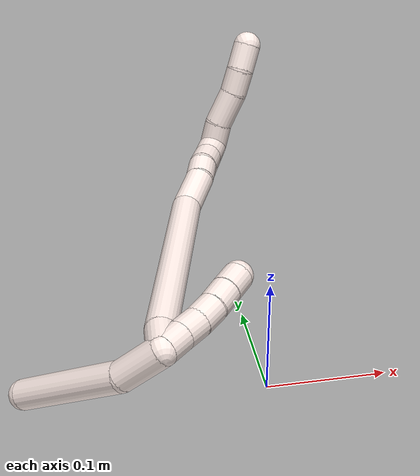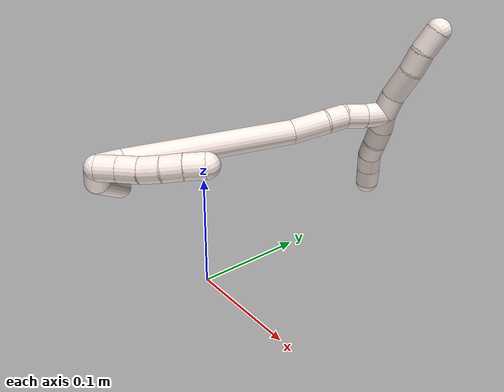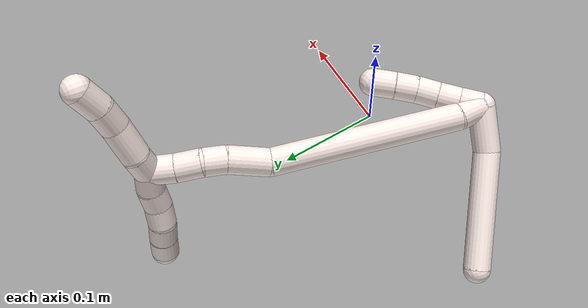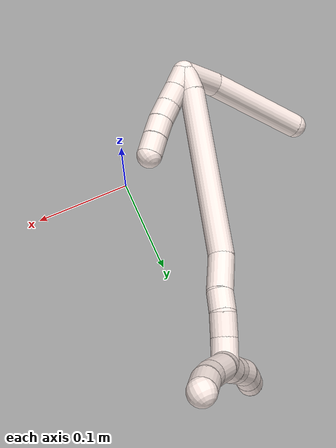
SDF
<sdf version="1.7">
 <world name="default">
  <model name="11">
   <static>0</static>
   <link name="11">
    <collision name="collision-cylinder-e_1_2_8">
     <pose>-0.01967 -0.007512 0.003045 1.18562 -1.17992 -0.847369</pose>
     <geometry><cylinder><radius>0.0125</radius><length>0.04255</length></cylinder></geometry>
     <surface>
      <friction><ode><mu>1.16</mu><mu2>1.16</mu2><slip1>0</slip1><slip2>0</slip2></ode></friction>
      <contact><ode><kp>1e+06</kp><kd>1</kd><max_vel>0</max_vel><min_depth>0.001</min_depth></ode></contact>
     </surface>
    </collision>
    <visual name="visual-cylinder-e_1_2_8">
     <pose>-0.01967 -0.007512 0.003045 1.18562 -1.17992 -0.847369</pose>
     <geometry><cylinder><radius>0.0125</radius><length>0.04255</length></cylinder></geometry>
     <material><ambient>1 0.933333 0.909804 1</ambient></material>
    </visual>
    <collision name="collision-cylinder-e_2_8_6">
     <pose>-0.083115 -0.034974 0.030011 0.695154 -0.952362 -0.369449</pose>
     <geometry><cylinder><radius>0.0125</radius><length>0.10745</length></cylinder></geometry>
     <surface>
      <friction><ode><mu>1.16</mu><mu2>1.16</mu2><slip1>0</slip1><slip2>0</slip2></ode></friction>
      <contact><ode><kp>1e+06</kp><kd>1</kd><max_vel>0</max_vel><min_depth>0.001</min_depth></ode></contact>
     </surface>
    </collision>
    <visual name="visual-cylinder-e_2_8_6">
     <pose>-0.083115 -0.034974 0.030011 0.695154 -0.952362 -0.369449</pose>
     <geometry><cylinder><radius>0.0125</radius><length>0.10745</length></cylinder></geometry>
     <material><ambient>1 0.933333 0.909804 1</ambient></material>
    </visual>
    <collision name="collision-cylinder-e_1_2_9">
     <pose>0.002014 0.007321 0.006508 -0.844098 0.202737 -0.091285</pose>
     <geometry><cylinder><radius>0.0125</radius><length>0.02</length></cylinder></geometry>
     <surface>
      <friction><ode><mu>1.16</mu><mu2>1.16</mu2><slip1>0</slip1><slip2>0</slip2></ode></friction>
      <contact><ode><kp>1e+06</kp><kd>1</kd><max_vel>0</max_vel><min_depth>0.001</min_depth></ode></contact>
     </surface>
    </collision>
    <visual name="visual-cylinder-e_1_2_9">
     <pose>0.002014 0.007321 0.006508 -0.844098 0.202737 -0.091285</pose>
     <geometry><cylinder><radius>0.0125</radius><length>0.02</length></cylinder></geometry>
     <material><ambient>1 0.933333 0.909804 1</ambient></material>
    </visual>
    <collision name="collision-cylinder-e_2_9_10">
     <pose>0.006191 0.0221 0.019316 -0.869417 0.218171 -0.10162</pose>
     <geometry><cylinder><radius>0.0125</radius><length>0.02</length></cylinder></geometry>
     <surface>
      <friction><ode><mu>1.16</mu><mu2>1.16</mu2><slip1>0</slip1><slip2>0</slip2></ode></friction>
      <contact><ode><kp>1e+06</kp><kd>1</kd><max_vel>0</max_vel><min_depth>0.001</min_depth></ode></contact>
     </surface>
    </collision>
    <visual name="visual-cylinder-e_2_9_10">
     <pose>0.006191 0.0221 0.019316 -0.869417 0.218171 -0.10162</pose>
     <geometry><cylinder><radius>0.0125</radius><length>0.02</length></cylinder></geometry>
     <material><ambient>1 0.933333 0.909804 1</ambient></material>
    </visual>
    <collision name="collision-cylinder-e_3_10_11">
     <pose>0.011306 0.036351 0.032335 -0.790846 0.29948 -0.125782</pose>
     <geometry><cylinder><radius>0.0125</radius><length>0.02</length></cylinder></geometry>
     <surface>
      <friction><ode><mu>1.16</mu><mu2>1.16</mu2><slip1>0</slip1><slip2>0</slip2></ode></friction>
      <contact><ode><kp>1e+06</kp><kd>1</kd><max_vel>0</max_vel><min_depth>0.001</min_depth></ode></contact>
     </surface>
    </collision>
    <visual name="visual-cylinder-e_3_10_11">
     <pose>0.011306 0.036351 0.032335 -0.790846 0.29948 -0.125782</pose>
     <geometry><cylinder><radius>0.0125</radius><length>0.02</length></cylinder></geometry>
     <material><ambient>1 0.933333 0.909804 1</ambient></material>
    </visual>
    <collision name="collision-cylinder-e_4_11_12">
     <pose>0.016741 0.049289 0.046542 -0.687253 0.251113 -0.090268</pose>
     <geometry><cylinder><radius>0.0125</radius><length>0.02</length></cylinder></geometry>
     <surface>
      <friction><ode><mu>1.16</mu><mu2>1.16</mu2><slip1>0</slip1><slip2>0</slip2></ode></friction>
      <contact><ode><kp>1e+06</kp><kd>1</kd><max_vel>0</max_vel><min_depth>0.001</min_depth></ode></contact>
     </surface>
    </collision>
    <visual name="visual-cylinder-e_4_11_12">
     <pose>0.016741 0.049289 0.046542 -0.687253 0.251113 -0.090268</pose>
     <geometry><cylinder><radius>0.0125</radius><length>0.02</length></cylinder></geometry>
     <material><ambient>1 0.933333 0.909804 1</ambient></material>
    </visual>
    <collision name="collision-cylinder-e_5_12_5">
     <pose>0.02123 0.061713 0.06155 -0.695579 0.201813 -0.073379</pose>
     <geometry><cylinder><radius>0.0125</radius><length>0.02</length></cylinder></geometry>
     <surface>
      <friction><ode><mu>1.16</mu><mu2>1.16</mu2><slip1>0</slip1><slip2>0</slip2></ode></friction>
      <contact><ode><kp>1e+06</kp><kd>1</kd><max_vel>0</max_vel><min_depth>0.001</min_depth></ode></contact>
     </surface>
    </collision>
    <visual name="visual-cylinder-e_5_12_5">
     <pose>0.02123 0.061713 0.06155 -0.695579 0.201813 -0.073379</pose>
     <geometry><cylinder><radius>0.0125</radius><length>0.02</length></cylinder></geometry>
     <material><ambient>1 0.933333 0.909804 1</ambient></material>
    </visual>
    <collision name="collision-cylinder-e_1_2_13">
     <pose>-0.001646 0.002088 0.011455 -0.180337 -0.14046 0.01272</pose>
     <geometry><cylinder><radius>0.0125</radius><length>0.023518</length></cylinder></geometry>
     <surface>
      <friction><ode><mu>1.16</mu><mu2>1.16</mu2><slip1>0</slip1><slip2>0</slip2></ode></friction>
      <contact><ode><kp>1e+06</kp><kd>1</kd><max_vel>0</max_vel><min_depth>0.001</min_depth></ode></contact>
     </surface>
    </collision>
    <visual name="visual-cylinder-e_1_2_13">
     <pose>-0.001646 0.002088 0.011455 -0.180337 -0.14046 0.01272</pose>
     <geometry><cylinder><radius>0.0125</radius><length>0.023518</length></cylinder></geometry>
     <material><ambient>1 0.933333 0.909804 1</ambient></material>
    </visual>
    <collision name="collision-cylinder-e_2_13_14">
     <pose>-0.005755 0.033759 0.10436 -0.348378 -0.028411 0.005</pose>
     <geometry><cylinder><radius>0.0125</radius><length>0.173383</length></cylinder></geometry>
     <surface>
      <friction><ode><mu>1.16</mu><mu2>1.16</mu2><slip1>0</slip1><slip2>0</slip2></ode></friction>
      <contact><ode><kp>1e+06</kp><kd>1</kd><max_vel>0</max_vel><min_depth>0.001</min_depth></ode></contact>
     </surface>
    </collision>
    <visual name="visual-cylinder-e_2_13_14">
     <pose>-0.005755 0.033759 0.10436 -0.348378 -0.028411 0.005</pose>
     <geometry><cylinder><radius>0.0125</radius><length>0.173383</length></cylinder></geometry>
     <material><ambient>1 0.933333 0.909804 1</ambient></material>
    </visual>
    <collision name="collision-cylinder-e_3_14_15">
     <pose>-0.003256 0.071178 0.202141 -0.447433 0.267394 -0.061185</pose>
     <geometry><cylinder><radius>0.0125</radius><length>0.037562</length></cylinder></geometry>
     <surface>
      <friction><ode><mu>1.16</mu><mu2>1.16</mu2><slip1>0</slip1><slip2>0</slip2></ode></friction>
      <contact><ode><kp>1e+06</kp><kd>1</kd><max_vel>0</max_vel><min_depth>0.001</min_depth></ode></contact>
     </surface>
    </collision>
    <visual name="visual-cylinder-e_3_14_15">
     <pose>-0.003256 0.071178 0.202141 -0.447433 0.267394 -0.061185</pose>
     <geometry><cylinder><radius>0.0125</radius><length>0.037562</length></cylinder></geometry>
     <material><ambient>1 0.933333 0.909804 1</ambient></material>
    </visual>
    <collision name="collision-cylinder-e_4_15_16">
     <pose>0.00291 0.082222 0.227931 -0.326882 0.119898 -0.019796</pose>
     <geometry><cylinder><radius>0.0125</radius><length>0.020122</length></cylinder></geometry>
     <surface>
      <friction><ode><mu>1.16</mu><mu2>1.16</mu2><slip1>0</slip1><slip2>0</slip2></ode></friction>
      <contact><ode><kp>1e+06</kp><kd>1</kd><max_vel>0</max_vel><min_depth>0.001</min_depth></ode></contact>
     </surface>
    </collision>
    <visual name="visual-cylinder-e_4_15_16">
     <pose>0.00291 0.082222 0.227931 -0.326882 0.119898 -0.019796</pose>
     <geometry><cylinder><radius>0.0125</radius><length>0.020122</length></cylinder></geometry>
     <material><ambient>1 0.933333 0.909804 1</ambient></material>
    </visual>
    <collision name="collision-cylinder-e_5_16_17">
     <pose>0.003155 0.090795 0.247377 -0.493108 -0.084322 0.021234</pose>
     <geometry><cylinder><radius>0.0125</radius><length>0.022752</length></cylinder></geometry>
     <surface>
      <friction><ode><mu>1.16</mu><mu2>1.16</mu2><slip1>0</slip1><slip2>0</slip2></ode></friction>
      <contact><ode><kp>1e+06</kp><kd>1</kd><max_vel>0</max_vel><min_depth>0.001</min_depth></ode></contact>
     </surface>
    </collision>
    <visual name="visual-cylinder-e_5_16_17">
     <pose>0.003155 0.090795 0.247377 -0.493108 -0.084322 0.021234</pose>
     <geometry><cylinder><radius>0.0125</radius><length>0.022752</length></cylinder></geometry>
     <material><ambient>1 0.933333 0.909804 1</ambient></material>
    </visual>
    <collision name="collision-cylinder-e_6_17_1">
     <pose>0.002609 0.10137 0.267417 -0.47798 0.036372 -0.008863</pose>
     <geometry><cylinder><radius>0.0125</radius><length>0.022663</length></cylinder></geometry>
     <surface>
      <friction><ode><mu>1.16</mu><mu2>1.16</mu2><slip1>0</slip1><slip2>0</slip2></ode></friction>
      <contact><ode><kp>1e+06</kp><kd>1</kd><max_vel>0</max_vel><min_depth>0.001</min_depth></ode></contact>
     </surface>
    </collision>
    <visual name="visual-cylinder-e_6_17_1">
     <pose>0.002609 0.10137 0.267417 -0.47798 0.036372 -0.008863</pose>
     <geometry><cylinder><radius>0.0125</radius><length>0.022663</length></cylinder></geometry>
     <material><ambient>1 0.933333 0.909804 1</ambient></material>
    </visual>
    <collision name="collision-cylinder-e_1_1_18">
     <pose>0.013182 0.105472 0.281317 0.280256 1.19562 0.191506</pose>
     <geometry><cylinder><radius>0.0125</radius><length>0.02184</length></cylinder></geometry>
     <surface>
      <friction><ode><mu>1.16</mu><mu2>1.16</mu2><slip1>0</slip1><slip2>0</slip2></ode></friction>
      <contact><ode><kp>1e+06</kp><kd>1</kd><max_vel>0</max_vel><min_depth>0.001</min_depth></ode></contact>
     </surface>
    </collision>
    <visual name="visual-cylinder-e_1_1_18">
     <pose>0.013182 0.105472 0.281317 0.280256 1.19562 0.191506</pose>
     <geometry><cylinder><radius>0.0125</radius><length>0.02184</length></cylinder></geometry>
     <material><ambient>1 0.933333 0.909804 1</ambient></material>
    </visual>
    <collision name="collision-cylinder-e_2_18_19">
     <pose>0.038711 0.105879 0.289848 -0.312492 1.26069 -0.228878</pose>
     <geometry><cylinder><radius>0.0125</radius><length>0.032277</length></cylinder></geometry>
     <surface>
      <friction><ode><mu>1.16</mu><mu2>1.16</mu2><slip1>0</slip1><slip2>0</slip2></ode></friction>
      <contact><ode><kp>1e+06</kp><kd>1</kd><max_vel>0</max_vel><min_depth>0.001</min_depth></ode></contact>
     </surface>
    </collision>
    <visual name="visual-cylinder-e_2_18_19">
     <pose>0.038711 0.105879 0.289848 -0.312492 1.26069 -0.228878</pose>
     <geometry><cylinder><radius>0.0125</radius><length>0.032277</length></cylinder></geometry>
     <material><ambient>1 0.933333 0.909804 1</ambient></material>
    </visual>
    <collision name="collision-cylinder-e_3_19_20">
     <pose>0.064314 0.106904 0.29858 0.120456 1.19182 0.081741</pose>
     <geometry><cylinder><radius>0.0125</radius><length>0.022032</length></cylinder></geometry>
     <surface>
      <friction><ode><mu>1.16</mu><mu2>1.16</mu2><slip1>0</slip1><slip2>0</slip2></ode></friction>
      <contact><ode><kp>1e+06</kp><kd>1</kd><max_vel>0</max_vel><min_depth>0.001</min_depth></ode></contact>
     </surface>
    </collision>
    <visual name="visual-cylinder-e_3_19_20">
     <pose>0.064314 0.106904 0.29858 0.120456 1.19182 0.081741</pose>
     <geometry><cylinder><radius>0.0125</radius><length>0.022032</length></cylinder></geometry>
     <material><ambient>1 0.933333 0.909804 1</ambient></material>
    </visual>
    <collision name="collision-cylinder-e_4_20_4">
     <pose>0.084704 0.106651 0.308873 -0.037959 1.019 -0.02121</pose>
     <geometry><cylinder><radius>0.0125</radius><length>0.023851</length></cylinder></geometry>
     <surface>
      <friction><ode><mu>1.16</mu><mu2>1.16</mu2><slip1>0</slip1><slip2>0</slip2></ode></friction>
      <contact><ode><kp>1e+06</kp><kd>1</kd><max_vel>0</max_vel><min_depth>0.001</min_depth></ode></contact>
     </surface>
    </collision>
    <visual name="visual-cylinder-e_4_20_4">
     <pose>0.084704 0.106651 0.308873 -0.037959 1.019 -0.02121</pose>
     <geometry><cylinder><radius>0.0125</radius><length>0.023851</length></cylinder></geometry>
     <material><ambient>1 0.933333 0.909804 1</ambient></material>
    </visual>
    <collision name="collision-cylinder-e_1_1_21">
     <pose>-0.006852 0.108107 0.277906 -1.29364 -1.41128 1.14346</pose>
     <geometry><cylinder><radius>0.0125</radius><length>0.02</length></cylinder></geometry>
     <surface>
      <friction><ode><mu>1.16</mu><mu2>1.16</mu2><slip1>0</slip1><slip2>0</slip2></ode></friction>
      <contact><ode><kp>1e+06</kp><kd>1</kd><max_vel>0</max_vel><min_depth>0.001</min_depth></ode></contact>
     </surface>
    </collision>
    <visual name="visual-cylinder-e_1_1_21">
     <pose>-0.006852 0.108107 0.277906 -1.29364 -1.41128 1.14346</pose>
     <geometry><cylinder><radius>0.0125</radius><length>0.02</length></cylinder></geometry>
     <material><ambient>1 0.933333 0.909804 1</ambient></material>
    </visual>
    <collision name="collision-cylinder-e_2_21_22">
     <pose>-0.02659 0.110344 0.276864 -2.6936 -1.4063 2.6165</pose>
     <geometry><cylinder><radius>0.0125</radius><length>0.02</length></cylinder></geometry>
     <surface>
      <friction><ode><mu>1.16</mu><mu2>1.16</mu2><slip1>0</slip1><slip2>0</slip2></ode></friction>
      <contact><ode><kp>1e+06</kp><kd>1</kd><max_vel>0</max_vel><min_depth>0.001</min_depth></ode></contact>
     </surface>
    </collision>
    <visual name="visual-cylinder-e_2_21_22">
     <pose>-0.02659 0.110344 0.276864 -2.6936 -1.4063 2.6165</pose>
     <geometry><cylinder><radius>0.0125</radius><length>0.02</length></cylinder></geometry>
     <material><ambient>1 0.933333 0.909804 1</ambient></material>
    </visual>
    <collision name="collision-cylinder-e_3_22_23">
     <pose>-0.046454 0.110961 0.275458 0.925469 -1.55931 -0.916322</pose>
     <geometry><cylinder><radius>0.0125</radius><length>0.02</length></cylinder></geometry>
     <surface>
      <friction><ode><mu>1.16</mu><mu2>1.16</mu2><slip1>0</slip1><slip2>0</slip2></ode></friction>
      <contact><ode><kp>1e+06</kp><kd>1</kd><max_vel>0</max_vel><min_depth>0.001</min_depth></ode></contact>
     </surface>
    </collision>
    <visual name="visual-cylinder-e_3_22_23">
     <pose>-0.046454 0.110961 0.275458 0.925469 -1.55931 -0.916322</pose>
     <geometry><cylinder><radius>0.0125</radius><length>0.02</length></cylinder></geometry>
     <material><ambient>1 0.933333 0.909804 1</ambient></material>
    </visual>
    <collision name="collision-cylinder-e_4_23_24">
     <pose>-0.066154 0.113252 0.275992 -1.37773 -1.32561 1.14256</pose>
     <geometry><cylinder><radius>0.0125</radius><length>0.02</length></cylinder></geometry>
     <surface>
      <friction><ode><mu>1.16</mu><mu2>1.16</mu2><slip1>0</slip1><slip2>0</slip2></ode></friction>
      <contact><ode><kp>1e+06</kp><kd>1</kd><max_vel>0</max_vel><min_depth>0.001</min_depth></ode></contact>
     </surface>
    </collision>
    <visual name="visual-cylinder-e_4_23_24">
     <pose>-0.066154 0.113252 0.275992 -1.37773 -1.32561 1.14256</pose>
     <geometry><cylinder><radius>0.0125</radius><length>0.02</length></cylinder></geometry>
     <material><ambient>1 0.933333 0.909804 1</ambient></material>
    </visual>
    <collision name="collision-cylinder-e_5_24_3">
     <pose>-0.085478 0.118348 0.276294 -1.63124 -1.29541 1.35406</pose>
     <geometry><cylinder><radius>0.0125</radius><length>0.02</length></cylinder></geometry>
     <surface>
      <friction><ode><mu>1.16</mu><mu2>1.16</mu2><slip1>0</slip1><slip2>0</slip2></ode></friction>
      <contact><ode><kp>1e+06</kp><kd>1</kd><max_vel>0</max_vel><min_depth>0.001</min_depth></ode></contact>
     </surface>
    </collision>
    <visual name="visual-cylinder-e_5_24_3">
     <pose>-0.085478 0.118348 0.276294 -1.63124 -1.29541 1.35406</pose>
     <geometry><cylinder><radius>0.0125</radius><length>0.02</length></cylinder></geometry>
     <material><ambient>1 0.933333 0.909804 1</ambient></material>
    </visual>
    <collision name="collision-sphere-3">
     <pose>-0.095102 0.121063 0.27613 0 -0 0</pose>
     <geometry><sphere><radius>0.0125</radius></sphere></geometry>
     <surface>
      <friction><ode><mu>1.16</mu><mu2>1.16</mu2><slip1>0</slip1><slip2>0</slip2></ode></friction>
      <contact><ode><kp>1e+06</kp><kd>1</kd><max_vel>0</max_vel><min_depth>0.001</min_depth></ode></contact>
     </surface>
    </collision>
    <visual name="visual-sphere-3">
     <pose>-0.095102 0.121063 0.27613 0 -0 0</pose>
     <geometry><sphere><radius>0.0125</radius></sphere></geometry>
     <material><ambient>1 0.933333 0.909804 1</ambient></material>
    </visual>
    <collision name="collision-sphere-24">
     <pose>-0.075855 0.115634 0.276458 0 -0 0</pose>
     <geometry><sphere><radius>0.0125</radius></sphere></geometry>
     <surface>
      <friction><ode><mu>1.16</mu><mu2>1.16</mu2><slip1>0</slip1><slip2>0</slip2></ode></friction>
      <contact><ode><kp>1e+06</kp><kd>1</kd><max_vel>0</max_vel><min_depth>0.001</min_depth></ode></contact>
     </surface>
    </collision>
    <visual name="visual-sphere-24">
     <pose>-0.075855 0.115634 0.276458 0 -0 0</pose>
     <geometry><sphere><radius>0.0125</radius></sphere></geometry>
     <material><ambient>1 0.933333 0.909804 1</ambient></material>
    </visual>
    <collision name="collision-sphere-23">
     <pose>-0.056453 0.11087 0.275527 0 -0 0</pose>
     <geometry><sphere><radius>0.0125</radius></sphere></geometry>
     <surface>
      <friction><ode><mu>1.16</mu><mu2>1.16</mu2><slip1>0</slip1><slip2>0</slip2></ode></friction>
      <contact><ode><kp>1e+06</kp><kd>1</kd><max_vel>0</max_vel><min_depth>0.001</min_depth></ode></contact>
     </surface>
    </collision>
    <visual name="visual-sphere-23">
     <pose>-0.056453 0.11087 0.275527 0 -0 0</pose>
     <geometry><sphere><radius>0.0125</radius></sphere></geometry>
     <material><ambient>1 0.933333 0.909804 1</ambient></material>
    </visual>
    <collision name="collision-sphere-22">
     <pose>-0.036455 0.111053 0.275389 0 -0 0</pose>
     <geometry><sphere><radius>0.0125</radius></sphere></geometry>
     <surface>
      <friction><ode><mu>1.16</mu><mu2>1.16</mu2><slip1>0</slip1><slip2>0</slip2></ode></friction>
      <contact><ode><kp>1e+06</kp><kd>1</kd><max_vel>0</max_vel><min_depth>0.001</min_depth></ode></contact>
     </surface>
    </collision>
    <visual name="visual-sphere-22">
     <pose>-0.036455 0.111053 0.275389 0 -0 0</pose>
     <geometry><sphere><radius>0.0125</radius></sphere></geometry>
     <material><ambient>1 0.933333 0.909804 1</ambient></material>
    </visual>
    <collision name="collision-sphere-21">
     <pose>-0.016725 0.109635 0.27834 0 -0 0</pose>
     <geometry><sphere><radius>0.0125</radius></sphere></geometry>
     <surface>
      <friction><ode><mu>1.16</mu><mu2>1.16</mu2><slip1>0</slip1><slip2>0</slip2></ode></friction>
      <contact><ode><kp>1e+06</kp><kd>1</kd><max_vel>0</max_vel><min_depth>0.001</min_depth></ode></contact>
     </surface>
    </collision>
    <visual name="visual-sphere-21">
     <pose>-0.016725 0.109635 0.27834 0 -0 0</pose>
     <geometry><sphere><radius>0.0125</radius></sphere></geometry>
     <material><ambient>1 0.933333 0.909804 1</ambient></material>
    </visual>
    <collision name="collision-sphere-4">
     <pose>0.09486 0.106888 0.315121 0 -0 0</pose>
     <geometry><sphere><radius>0.0125</radius></sphere></geometry>
     <surface>
      <friction><ode><mu>1.16</mu><mu2>1.16</mu2><slip1>0</slip1><slip2>0</slip2></ode></friction>
      <contact><ode><kp>1e+06</kp><kd>1</kd><max_vel>0</max_vel><min_depth>0.001</min_depth></ode></contact>
     </surface>
    </collision>
    <visual name="visual-sphere-4">
     <pose>0.09486 0.106888 0.315121 0 -0 0</pose>
     <geometry><sphere><radius>0.0125</radius></sphere></geometry>
     <material><ambient>1 0.933333 0.909804 1</ambient></material>
    </visual>
    <collision name="collision-sphere-20">
     <pose>0.074548 0.106414 0.302626 0 -0 0</pose>
     <geometry><sphere><radius>0.0125</radius></sphere></geometry>
     <surface>
      <friction><ode><mu>1.16</mu><mu2>1.16</mu2><slip1>0</slip1><slip2>0</slip2></ode></friction>
      <contact><ode><kp>1e+06</kp><kd>1</kd><max_vel>0</max_vel><min_depth>0.001</min_depth></ode></contact>
     </surface>
    </collision>
    <visual name="visual-sphere-20">
     <pose>0.074548 0.106414 0.302626 0 -0 0</pose>
     <geometry><sphere><radius>0.0125</radius></sphere></geometry>
     <material><ambient>1 0.933333 0.909804 1</ambient></material>
    </visual>
    <collision name="collision-sphere-11">
     <pose>0.014256 0.043144 0.039054 0 -0 0</pose>
     <geometry><sphere><radius>0.0125</radius></sphere></geometry>
     <surface>
      <friction><ode><mu>1.16</mu><mu2>1.16</mu2><slip1>0</slip1><slip2>0</slip2></ode></friction>
      <contact><ode><kp>1e+06</kp><kd>1</kd><max_vel>0</max_vel><min_depth>0.001</min_depth></ode></contact>
     </surface>
    </collision>
    <visual name="visual-sphere-11">
     <pose>0.014256 0.043144 0.039054 0 -0 0</pose>
     <geometry><sphere><radius>0.0125</radius></sphere></geometry>
     <material><ambient>1 0.933333 0.909804 1</ambient></material>
    </visual>
    <collision name="collision-sphere-10">
     <pose>0.008356 0.029558 0.025615 0 -0 0</pose>
     <geometry><sphere><radius>0.0125</radius></sphere></geometry>
     <surface>
      <friction><ode><mu>1.16</mu><mu2>1.16</mu2><slip1>0</slip1><slip2>0</slip2></ode></friction>
      <contact><ode><kp>1e+06</kp><kd>1</kd><max_vel>0</max_vel><min_depth>0.001</min_depth></ode></contact>
     </surface>
    </collision>
    <visual name="visual-sphere-10">
     <pose>0.008356 0.029558 0.025615 0 -0 0</pose>
     <geometry><sphere><radius>0.0125</radius></sphere></geometry>
     <material><ambient>1 0.933333 0.909804 1</ambient></material>
    </visual>
    <collision name="collision-sphere-6">
     <pose>-0.12689 -0.054924 0.053931 0 -0 0</pose>
     <geometry><sphere><radius>0.0125</radius></sphere></geometry>
     <surface>
      <friction><ode><mu>1.16</mu><mu2>1.16</mu2><slip1>0</slip1><slip2>0</slip2></ode></friction>
      <contact><ode><kp>1e+06</kp><kd>1</kd><max_vel>0</max_vel><min_depth>0.001</min_depth></ode></contact>
     </surface>
    </collision>
    <visual name="visual-sphere-6">
     <pose>-0.12689 -0.054924 0.053931 0 -0 0</pose>
     <geometry><sphere><radius>0.0125</radius></sphere></geometry>
     <material><ambient>1 0.933333 0.909804 1</ambient></material>
    </visual>
    <collision name="collision-sphere-9">
     <pose>0.004027 0.014641 0.013016 0 -0 0</pose>
     <geometry><sphere><radius>0.0125</radius></sphere></geometry>
     <surface>
      <friction><ode><mu>1.16</mu><mu2>1.16</mu2><slip1>0</slip1><slip2>0</slip2></ode></friction>
      <contact><ode><kp>1e+06</kp><kd>1</kd><max_vel>0</max_vel><min_depth>0.001</min_depth></ode></contact>
     </surface>
    </collision>
    <visual name="visual-sphere-9">
     <pose>0.004027 0.014641 0.013016 0 -0 0</pose>
     <geometry><sphere><radius>0.0125</radius></sphere></geometry>
     <material><ambient>1 0.933333 0.909804 1</ambient></material>
    </visual>
    <collision name="collision-sphere-2">
     <geometry><sphere><radius>0.0125</radius></sphere></geometry>
     <surface>
      <friction><ode><mu>1.16</mu><mu2>1.16</mu2><slip1>0</slip1><slip2>0</slip2></ode></friction>
      <contact><ode><kp>1e+06</kp><kd>1</kd><max_vel>0</max_vel><min_depth>0.001</min_depth></ode></contact>
     </surface>
    </collision>
    <visual name="visual-sphere-2">
     <geometry><sphere><radius>0.0125</radius></sphere></geometry>
     <material><ambient>1 0.933333 0.909804 1</ambient></material>
    </visual>
    <collision name="collision-sphere-19">
     <pose>0.05408 0.107393 0.294534 0 -0 0</pose>
     <geometry><sphere><radius>0.0125</radius></sphere></geometry>
     <surface>
      <friction><ode><mu>1.16</mu><mu2>1.16</mu2><slip1>0</slip1><slip2>0</slip2></ode></friction>
      <contact><ode><kp>1e+06</kp><kd>1</kd><max_vel>0</max_vel><min_depth>0.001</min_depth></ode></contact>
     </surface>
    </collision>
    <visual name="visual-sphere-19">
     <pose>0.05408 0.107393 0.294534 0 -0 0</pose>
     <geometry><sphere><radius>0.0125</radius></sphere></geometry>
     <material><ambient>1 0.933333 0.909804 1</ambient></material>
    </visual>
    <collision name="collision-sphere-8">
     <pose>-0.039341 -0.015024 0.006091 0 -0 0</pose>
     <geometry><sphere><radius>0.0125</radius></sphere></geometry>
     <surface>
      <friction><ode><mu>1.16</mu><mu2>1.16</mu2><slip1>0</slip1><slip2>0</slip2></ode></friction>
      <contact><ode><kp>1e+06</kp><kd>1</kd><max_vel>0</max_vel><min_depth>0.001</min_depth></ode></contact>
     </surface>
    </collision>
    <visual name="visual-sphere-8">
     <pose>-0.039341 -0.015024 0.006091 0 -0 0</pose>
     <geometry><sphere><radius>0.0125</radius></sphere></geometry>
     <material><ambient>1 0.933333 0.909804 1</ambient></material>
    </visual>
    <collision name="collision-sphere-12">
     <pose>0.019226 0.055435 0.054029 0 -0 0</pose>
     <geometry><sphere><radius>0.0125</radius></sphere></geometry>
     <surface>
      <friction><ode><mu>1.16</mu><mu2>1.16</mu2><slip1>0</slip1><slip2>0</slip2></ode></friction>
      <contact><ode><kp>1e+06</kp><kd>1</kd><max_vel>0</max_vel><min_depth>0.001</min_depth></ode></contact>
     </surface>
    </collision>
    <visual name="visual-sphere-12">
     <pose>0.019226 0.055435 0.054029 0 -0 0</pose>
     <geometry><sphere><radius>0.0125</radius></sphere></geometry>
     <material><ambient>1 0.933333 0.909804 1</ambient></material>
    </visual>
    <collision name="collision-sphere-5">
     <pose>0.023235 0.067991 0.069071 0 -0 0</pose>
     <geometry><sphere><radius>0.0125</radius></sphere></geometry>
     <surface>
      <friction><ode><mu>1.16</mu><mu2>1.16</mu2><slip1>0</slip1><slip2>0</slip2></ode></friction>
      <contact><ode><kp>1e+06</kp><kd>1</kd><max_vel>0</max_vel><min_depth>0.001</min_depth></ode></contact>
     </surface>
    </collision>
    <visual name="visual-sphere-5">
     <pose>0.023235 0.067991 0.069071 0 -0 0</pose>
     <geometry><sphere><radius>0.0125</radius></sphere></geometry>
     <material><ambient>1 0.933333 0.909804 1</ambient></material>
    </visual>
    <collision name="collision-sphere-13">
     <pose>-0.003293 0.004177 0.022909 0 -0 0</pose>
     <geometry><sphere><radius>0.0125</radius></sphere></geometry>
     <surface>
      <friction><ode><mu>1.16</mu><mu2>1.16</mu2><slip1>0</slip1><slip2>0</slip2></ode></friction>
      <contact><ode><kp>1e+06</kp><kd>1</kd><max_vel>0</max_vel><min_depth>0.001</min_depth></ode></contact>
     </surface>
    </collision>
    <visual name="visual-sphere-13">
     <pose>-0.003293 0.004177 0.022909 0 -0 0</pose>
     <geometry><sphere><radius>0.0125</radius></sphere></geometry>
     <material><ambient>1 0.933333 0.909804 1</ambient></material>
    </visual>
    <collision name="collision-sphere-14">
     <pose>-0.008218 0.063341 0.185811 0 -0 0</pose>
     <geometry><sphere><radius>0.0125</radius></sphere></geometry>
     <surface>
      <friction><ode><mu>1.16</mu><mu2>1.16</mu2><slip1>0</slip1><slip2>0</slip2></ode></friction>
      <contact><ode><kp>1e+06</kp><kd>1</kd><max_vel>0</max_vel><min_depth>0.001</min_depth></ode></contact>
     </surface>
    </collision>
    <visual name="visual-sphere-14">
     <pose>-0.008218 0.063341 0.185811 0 -0 0</pose>
     <geometry><sphere><radius>0.0125</radius></sphere></geometry>
     <material><ambient>1 0.933333 0.909804 1</ambient></material>
    </visual>
    <collision name="collision-sphere-15">
     <pose>0.001707 0.079015 0.218471 0 -0 0</pose>
     <geometry><sphere><radius>0.0125</radius></sphere></geometry>
     <surface>
      <friction><ode><mu>1.16</mu><mu2>1.16</mu2><slip1>0</slip1><slip2>0</slip2></ode></friction>
      <contact><ode><kp>1e+06</kp><kd>1</kd><max_vel>0</max_vel><min_depth>0.001</min_depth></ode></contact>
     </surface>
    </collision>
    <visual name="visual-sphere-15">
     <pose>0.001707 0.079015 0.218471 0 -0 0</pose>
     <geometry><sphere><radius>0.0125</radius></sphere></geometry>
     <material><ambient>1 0.933333 0.909804 1</ambient></material>
    </visual>
    <collision name="collision-sphere-16">
     <pose>0.004113 0.08543 0.237391 0 -0 0</pose>
     <geometry><sphere><radius>0.0125</radius></sphere></geometry>
     <surface>
      <friction><ode><mu>1.16</mu><mu2>1.16</mu2><slip1>0</slip1><slip2>0</slip2></ode></friction>
      <contact><ode><kp>1e+06</kp><kd>1</kd><max_vel>0</max_vel><min_depth>0.001</min_depth></ode></contact>
     </surface>
    </collision>
    <visual name="visual-sphere-16">
     <pose>0.004113 0.08543 0.237391 0 -0 0</pose>
     <geometry><sphere><radius>0.0125</radius></sphere></geometry>
     <material><ambient>1 0.933333 0.909804 1</ambient></material>
    </visual>
    <collision name="collision-sphere-17">
     <pose>0.002197 0.096161 0.257362 0 -0 0</pose>
     <geometry><sphere><radius>0.0125</radius></sphere></geometry>
     <surface>
      <friction><ode><mu>1.16</mu><mu2>1.16</mu2><slip1>0</slip1><slip2>0</slip2></ode></friction>
      <contact><ode><kp>1e+06</kp><kd>1</kd><max_vel>0</max_vel><min_depth>0.001</min_depth></ode></contact>
     </surface>
    </collision>
    <visual name="visual-sphere-17">
     <pose>0.002197 0.096161 0.257362 0 -0 0</pose>
     <geometry><sphere><radius>0.0125</radius></sphere></geometry>
     <material><ambient>1 0.933333 0.909804 1</ambient></material>
    </visual>
    <collision name="collision-sphere-1">
     <pose>0.003021 0.106579 0.277471 0 -0 0</pose>
     <geometry><sphere><radius>0.0125</radius></sphere></geometry>
     <surface>
      <friction><ode><mu>1.16</mu><mu2>1.16</mu2><slip1>0</slip1><slip2>0</slip2></ode></friction>
      <contact><ode><kp>1e+06</kp><kd>1</kd><max_vel>0</max_vel><min_depth>0.001</min_depth></ode></contact>
     </surface>
    </collision>
    <visual name="visual-sphere-1">
     <pose>0.003021 0.106579 0.277471 0 -0 0</pose>
     <geometry><sphere><radius>0.0125</radius></sphere></geometry>
     <material><ambient>1 0.933333 0.909804 1</ambient></material>
    </visual>
    <collision name="collision-sphere-18">
     <pose>0.023342 0.104365 0.285162 0 -0 0</pose>
     <geometry><sphere><radius>0.0125</radius></sphere></geometry>
     <surface>
      <friction><ode><mu>1.16</mu><mu2>1.16</mu2><slip1>0</slip1><slip2>0</slip2></ode></friction>
      <contact><ode><kp>1e+06</kp><kd>1</kd><max_vel>0</max_vel><min_depth>0.001</min_depth></ode></contact>
     </surface>
    </collision>
    <visual name="visual-sphere-18">
     <pose>0.023342 0.104365 0.285162 0 -0 0</pose>
     <geometry><sphere><radius>0.0125</radius></sphere></geometry>
     <material><ambient>1 0.933333 0.909804 1</ambient></material>
    </visual>
    <inertial>
     <pose>-0.012325 0.047856 0.141341 0 -0 0</pose>
     <mass>0.75</mass>
     <inertia>
      <ixx>0.000494</ixx>
      <ixy>0</ixy>
      <ixz>0</ixz>
      <iyy>0.000541</iyy>
      <iyz>0</iyz>
      <izz>1.8e-05</izz>
     </inertia>
    </inertial>
   </link>
   <pose>-0.090961 -0.053591 0.093102 -1.12223 -1.11809 -0.371429</pose>
  </model>
 </world>
</sdf>
